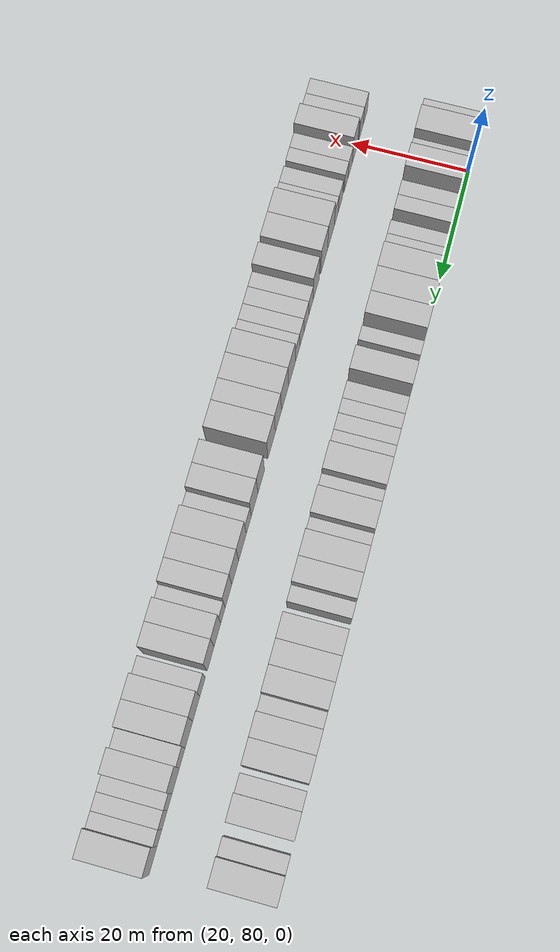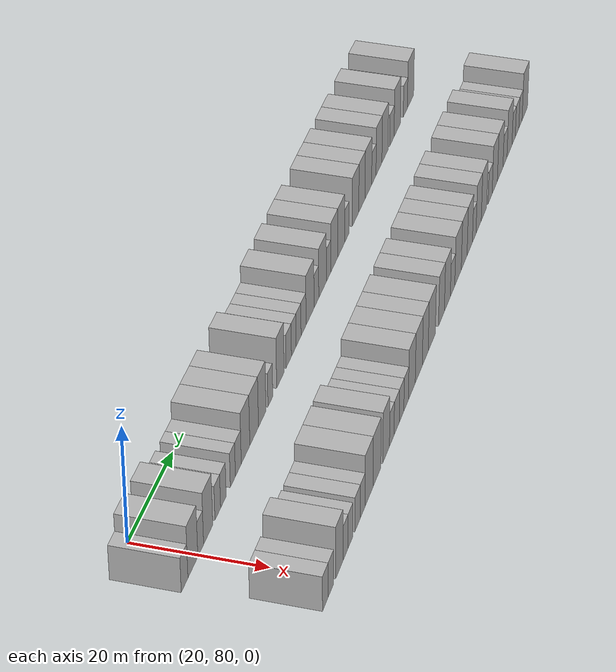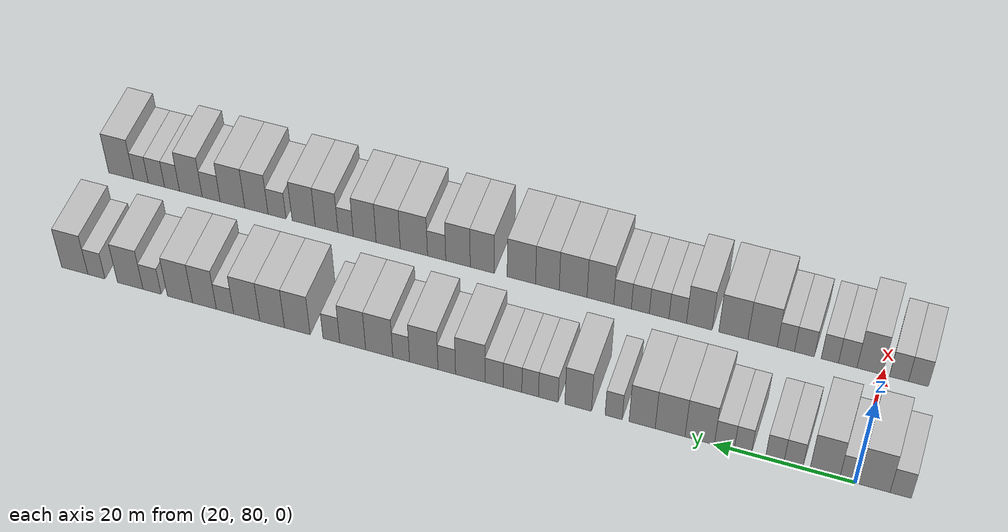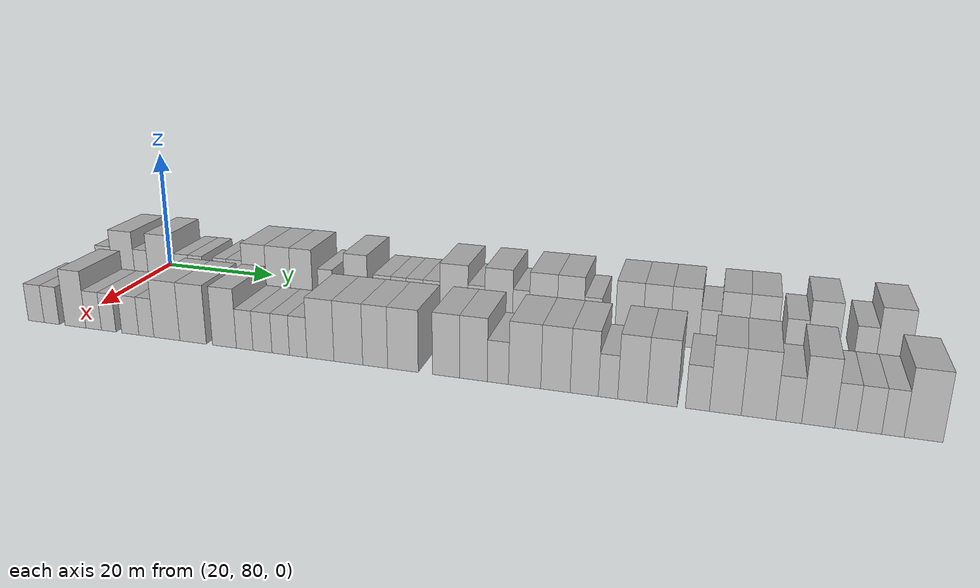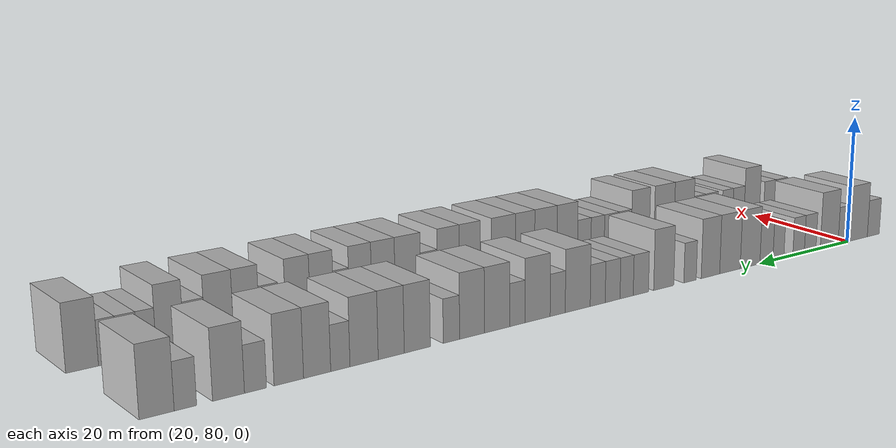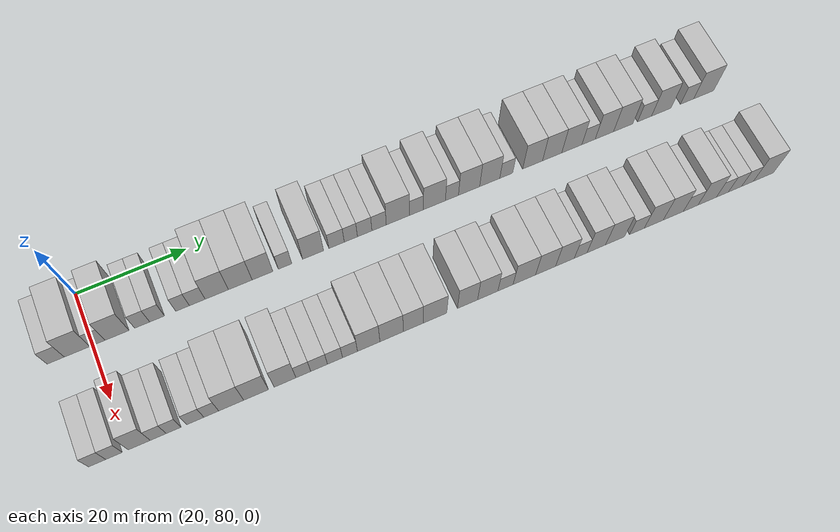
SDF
<sdf version="1.6">
 <world name="default">
  <model name="building_72">
   <static>1</static>
   <pose>25.0000 73.6860 0 0.000000 0.000000 0.000000</pose>
   <link name="link">
    <pose>0 0 3.00 0 0 0</pose>
    <collision name="collision"><geometry><box><size>10.0000 2.9551 6.0000</size></box></geometry></collision>
    <visual name="visual">
     <cast_shadows>0</cast_shadows>
     <geometry><box><size>10.0000 2.9551 6.0000</size></box></geometry>
     <material>
      <script>
       <uri>model://HANNAS_wall/materials/scripts</uri>
       <uri>model://HANNAS_wall/materials/textures</uri>
       <name>vrc/HANNAS_wall</name>
      </script>
     </material>
    </visual>
   </link>
  </model>
  <model name="building_73">
   <static>1</static>
   <pose>25.0000 77.3715 0 0.000000 0.000000 0.000000</pose>
   <link name="link">
    <pose>0 0 4.50 0 0 0</pose>
    <collision name="collision"><geometry><box><size>10.0000 4.4159 9.0000</size></box></geometry></collision>
    <visual name="visual">
     <cast_shadows>0</cast_shadows>
     <geometry><box><size>10.0000 4.4159 9.0000</size></box></geometry>
     <material>
      <script>
       <uri>model://HANNAS_wall/materials/scripts</uri>
       <uri>model://HANNAS_wall/materials/textures</uri>
       <name>vrc/HANNAS_wall</name>
      </script>
     </material>
    </visual>
   </link>
  </model>
  <model name="building_74">
   <static>1</static>
   <pose>25.0000 80.8892 0 0.000000 0.000000 0.000000</pose>
   <link name="link">
    <pose>0 0 3.00 0 0 0</pose>
    <collision name="collision"><geometry><box><size>10.0000 2.6195 6.0000</size></box></geometry></collision>
    <visual name="visual">
     <cast_shadows>0</cast_shadows>
     <geometry><box><size>10.0000 2.6195 6.0000</size></box></geometry>
     <material>
      <script>
       <uri>model://HANNAS_wall/materials/scripts</uri>
       <uri>model://HANNAS_wall/materials/textures</uri>
       <name>vrc/HANNAS_wall</name>
      </script>
     </material>
    </visual>
   </link>
  </model>
  <model name="building_75">
   <static>1</static>
   <pose>25.0000 84.2985 0 0.000000 0.000000 0.000000</pose>
   <link name="link">
    <pose>0 0 4.50 0 0 0</pose>
    <collision name="collision"><geometry><box><size>10.0000 4.1991 9.0000</size></box></geometry></collision>
    <visual name="visual">
     <cast_shadows>0</cast_shadows>
     <geometry><box><size>10.0000 4.1991 9.0000</size></box></geometry>
     <material>
      <script>
       <uri>model://HANNAS_wall/materials/scripts</uri>
       <uri>model://HANNAS_wall/materials/textures</uri>
       <name>vrc/HANNAS_wall</name>
      </script>
     </material>
    </visual>
   </link>
  </model>
  <model name="building_76">
   <static>1</static>
   <pose>25.0000 88.7278 0 0.000000 0.000000 0.000000</pose>
   <link name="link">
    <pose>0 0 3.00 0 0 0</pose>
    <collision name="collision"><geometry><box><size>10.0000 2.6595 6.0000</size></box></geometry></collision>
    <visual name="visual">
     <cast_shadows>0</cast_shadows>
     <geometry><box><size>10.0000 2.6595 6.0000</size></box></geometry>
     <material>
      <script>
       <uri>model://HANNAS_wall/materials/scripts</uri>
       <uri>model://HANNAS_wall/materials/textures</uri>
       <name>vrc/HANNAS_wall</name>
      </script>
     </material>
    </visual>
   </link>
  </model>
  <model name="building_77">
   <static>1</static>
   <pose>25.0000 91.3631 0 0.000000 0.000000 0.000000</pose>
   <link name="link">
    <pose>0 0 3.00 0 0 0</pose>
    <collision name="collision"><geometry><box><size>10.0000 2.6112 6.0000</size></box></geometry></collision>
    <visual name="visual">
     <cast_shadows>0</cast_shadows>
     <geometry><box><size>10.0000 2.6112 6.0000</size></box></geometry>
     <material>
      <script>
       <uri>model://HANNAS_wall/materials/scripts</uri>
       <uri>model://HANNAS_wall/materials/textures</uri>
       <name>vrc/HANNAS_wall</name>
      </script>
     </material>
    </visual>
   </link>
  </model>
  <model name="building_78">
   <static>1</static>
   <pose>25.0000 95.8824 0 0.000000 0.000000 0.000000</pose>
   <link name="link">
    <pose>0 0 3.00 0 0 0</pose>
    <collision name="collision"><geometry><box><size>10.0000 2.4275 6.0000</size></box></geometry></collision>
    <visual name="visual">
     <cast_shadows>0</cast_shadows>
     <geometry><box><size>10.0000 2.4275 6.0000</size></box></geometry>
     <material>
      <script>
       <uri>model://HANNAS_wall/materials/scripts</uri>
       <uri>model://HANNAS_wall/materials/textures</uri>
       <name>vrc/HANNAS_wall</name>
      </script>
     </material>
    </visual>
   </link>
  </model>
  <model name="building_79">
   <static>1</static>
   <pose>25.0000 98.5160 0 0.000000 0.000000 0.000000</pose>
   <link name="link">
    <pose>0 0 3.00 0 0 0</pose>
    <collision name="collision"><geometry><box><size>10.0000 2.8397 6.0000</size></box></geometry></collision>
    <visual name="visual">
     <cast_shadows>0</cast_shadows>
     <geometry><box><size>10.0000 2.8397 6.0000</size></box></geometry>
     <material>
      <script>
       <uri>model://HANNAS_wall/materials/scripts</uri>
       <uri>model://HANNAS_wall/materials/textures</uri>
       <name>vrc/HANNAS_wall</name>
      </script>
     </material>
    </visual>
   </link>
  </model>
  <model name="building_80">
   <static>1</static>
   <pose>25.0000 102.0439 0 0.000000 0.000000 0.000000</pose>
   <link name="link">
    <pose>0 0 4.50 0 0 0</pose>
    <collision name="collision"><geometry><box><size>10.0000 4.2161 9.0000</size></box></geometry></collision>
    <visual name="visual">
     <cast_shadows>0</cast_shadows>
     <geometry><box><size>10.0000 4.2161 9.0000</size></box></geometry>
     <material>
      <script>
       <uri>model://HANNAS_wall/materials/scripts</uri>
       <uri>model://HANNAS_wall/materials/textures</uri>
       <name>vrc/HANNAS_wall</name>
      </script>
     </material>
    </visual>
   </link>
  </model>
  <model name="building_81">
   <static>1</static>
   <pose>25.0000 106.3087 0 0.000000 0.000000 0.000000</pose>
   <link name="link">
    <pose>0 0 4.50 0 0 0</pose>
    <collision name="collision"><geometry><box><size>10.0000 4.3135 9.0000</size></box></geometry></collision>
    <visual name="visual">
     <cast_shadows>0</cast_shadows>
     <geometry><box><size>10.0000 4.3135 9.0000</size></box></geometry>
     <material>
      <script>
       <uri>model://HANNAS_wall/materials/scripts</uri>
       <uri>model://HANNAS_wall/materials/textures</uri>
       <name>vrc/HANNAS_wall</name>
      </script>
     </material>
    </visual>
   </link>
  </model>
  <model name="building_82">
   <static>1</static>
   <pose>25.0000 110.3620 0 0.000000 0.000000 0.000000</pose>
   <link name="link">
    <pose>0 0 4.50 0 0 0</pose>
    <collision name="collision"><geometry><box><size>10.0000 3.7931 9.0000</size></box></geometry></collision>
    <visual name="visual">
     <cast_shadows>0</cast_shadows>
     <geometry><box><size>10.0000 3.7931 9.0000</size></box></geometry>
     <material>
      <script>
       <uri>model://HANNAS_wall/materials/scripts</uri>
       <uri>model://HANNAS_wall/materials/textures</uri>
       <name>vrc/HANNAS_wall</name>
      </script>
     </material>
    </visual>
   </link>
  </model>
  <model name="building_83">
   <static>1</static>
   <pose>25.0000 114.5049 0 0.000000 0.000000 0.000000</pose>
   <link name="link">
    <pose>0 0 3.00 0 0 0</pose>
    <collision name="collision"><geometry><box><size>10.0000 2.4926 6.0000</size></box></geometry></collision>
    <visual name="visual">
     <cast_shadows>0</cast_shadows>
     <geometry><box><size>10.0000 2.4926 6.0000</size></box></geometry>
     <material>
      <script>
       <uri>model://HANNAS_wall/materials/scripts</uri>
       <uri>model://HANNAS_wall/materials/textures</uri>
       <name>vrc/HANNAS_wall</name>
      </script>
     </material>
    </visual>
   </link>
  </model>
  <model name="building_84">
   <static>1</static>
   <pose>25.0000 119.7114 0 0.000000 0.000000 0.000000</pose>
   <link name="link">
    <pose>0 0 4.50 0 0 0</pose>
    <collision name="collision"><geometry><box><size>10.0000 3.9204 9.0000</size></box></geometry></collision>
    <visual name="visual">
     <cast_shadows>0</cast_shadows>
     <geometry><box><size>10.0000 3.9204 9.0000</size></box></geometry>
     <material>
      <script>
       <uri>model://HANNAS_wall/materials/scripts</uri>
       <uri>model://HANNAS_wall/materials/textures</uri>
       <name>vrc/HANNAS_wall</name>
      </script>
     </material>
    </visual>
   </link>
  </model>
  <model name="building_85">
   <static>1</static>
   <pose>25.0000 124.1178 0 0.000000 0.000000 0.000000</pose>
   <link name="link">
    <pose>0 0 3.00 0 0 0</pose>
    <collision name="collision"><geometry><box><size>10.0000 2.8923 6.0000</size></box></geometry></collision>
    <visual name="visual">
     <cast_shadows>0</cast_shadows>
     <geometry><box><size>10.0000 2.8923 6.0000</size></box></geometry>
     <material>
      <script>
       <uri>model://HANNAS_wall/materials/scripts</uri>
       <uri>model://HANNAS_wall/materials/textures</uri>
       <name>vrc/HANNAS_wall</name>
      </script>
     </material>
    </visual>
   </link>
  </model>
  <model name="building_86">
   <static>1</static>
   <pose>25.0000 126.8024 0 0.000000 0.000000 0.000000</pose>
   <link name="link">
    <pose>0 0 3.00 0 0 0</pose>
    <collision name="collision"><geometry><box><size>10.0000 2.4771 6.0000</size></box></geometry></collision>
    <visual name="visual">
     <cast_shadows>0</cast_shadows>
     <geometry><box><size>10.0000 2.4771 6.0000</size></box></geometry>
     <material>
      <script>
       <uri>model://HANNAS_wall/materials/scripts</uri>
       <uri>model://HANNAS_wall/materials/textures</uri>
       <name>vrc/HANNAS_wall</name>
      </script>
     </material>
    </visual>
   </link>
  </model>
  <model name="building_87">
   <static>1</static>
   <pose>25.0000 129.4129 0 0.000000 0.000000 0.000000</pose>
   <link name="link">
    <pose>0 0 3.00 0 0 0</pose>
    <collision name="collision"><geometry><box><size>10.0000 2.7439 6.0000</size></box></geometry></collision>
    <visual name="visual">
     <cast_shadows>0</cast_shadows>
     <geometry><box><size>10.0000 2.7439 6.0000</size></box></geometry>
     <material>
      <script>
       <uri>model://HANNAS_wall/materials/scripts</uri>
       <uri>model://HANNAS_wall/materials/textures</uri>
       <name>vrc/HANNAS_wall</name>
      </script>
     </material>
    </visual>
   </link>
  </model>
  <model name="building_88">
   <static>1</static>
   <pose>25.0000 132.1511 0 0.000000 0.000000 0.000000</pose>
   <link name="link">
    <pose>0 0 3.00 0 0 0</pose>
    <collision name="collision"><geometry><box><size>10.0000 2.7324 6.0000</size></box></geometry></collision>
    <visual name="visual">
     <cast_shadows>0</cast_shadows>
     <geometry><box><size>10.0000 2.7324 6.0000</size></box></geometry>
     <material>
      <script>
       <uri>model://HANNAS_wall/materials/scripts</uri>
       <uri>model://HANNAS_wall/materials/textures</uri>
       <name>vrc/HANNAS_wall</name>
      </script>
     </material>
    </visual>
   </link>
  </model>
  <model name="building_89">
   <static>1</static>
   <pose>25.0000 135.7438 0 0.000000 0.000000 0.000000</pose>
   <link name="link">
    <pose>0 0 4.50 0 0 0</pose>
    <collision name="collision"><geometry><box><size>10.0000 4.4530 9.0000</size></box></geometry></collision>
    <visual name="visual">
     <cast_shadows>0</cast_shadows>
     <geometry><box><size>10.0000 4.4530 9.0000</size></box></geometry>
     <material>
      <script>
       <uri>model://HANNAS_wall/materials/scripts</uri>
       <uri>model://HANNAS_wall/materials/textures</uri>
       <name>vrc/HANNAS_wall</name>
      </script>
     </material>
    </visual>
   </link>
  </model>
  <model name="building_90">
   <static>1</static>
   <pose>25.0000 139.2900 0 0.000000 0.000000 0.000000</pose>
   <link name="link">
    <pose>0 0 3.00 0 0 0</pose>
    <collision name="collision"><geometry><box><size>10.0000 2.6393 6.0000</size></box></geometry></collision>
    <visual name="visual">
     <cast_shadows>0</cast_shadows>
     <geometry><box><size>10.0000 2.6393 6.0000</size></box></geometry>
     <material>
      <script>
       <uri>model://HANNAS_wall/materials/scripts</uri>
       <uri>model://HANNAS_wall/materials/textures</uri>
       <name>vrc/HANNAS_wall</name>
      </script>
     </material>
    </visual>
   </link>
  </model>
  <model name="building_91">
   <static>1</static>
   <pose>25.0000 142.7650 0 0.000000 0.000000 0.000000</pose>
   <link name="link">
    <pose>0 0 4.50 0 0 0</pose>
    <collision name="collision"><geometry><box><size>10.0000 4.3108 9.0000</size></box></geometry></collision>
    <visual name="visual">
     <cast_shadows>0</cast_shadows>
     <geometry><box><size>10.0000 4.3108 9.0000</size></box></geometry>
     <material>
      <script>
       <uri>model://HANNAS_wall/materials/scripts</uri>
       <uri>model://HANNAS_wall/materials/textures</uri>
       <name>vrc/HANNAS_wall</name>
      </script>
     </material>
    </visual>
   </link>
  </model>
  <model name="building_92">
   <static>1</static>
   <pose>25.0000 146.1986 0 0.000000 0.000000 0.000000</pose>
   <link name="link">
    <pose>0 0 3.00 0 0 0</pose>
    <collision name="collision"><geometry><box><size>10.0000 2.5564 6.0000</size></box></geometry></collision>
    <visual name="visual">
     <cast_shadows>0</cast_shadows>
     <geometry><box><size>10.0000 2.5564 6.0000</size></box></geometry>
     <material>
      <script>
       <uri>model://HANNAS_wall/materials/scripts</uri>
       <uri>model://HANNAS_wall/materials/textures</uri>
       <name>vrc/HANNAS_wall</name>
      </script>
     </material>
    </visual>
   </link>
  </model>
  <model name="building_93">
   <static>1</static>
   <pose>25.0000 149.5590 0 0.000000 0.000000 0.000000</pose>
   <link name="link">
    <pose>0 0 4.50 0 0 0</pose>
    <collision name="collision"><geometry><box><size>10.0000 4.1644 9.0000</size></box></geometry></collision>
    <visual name="visual">
     <cast_shadows>0</cast_shadows>
     <geometry><box><size>10.0000 4.1644 9.0000</size></box></geometry>
     <material>
      <script>
       <uri>model://HANNAS_wall/materials/scripts</uri>
       <uri>model://HANNAS_wall/materials/textures</uri>
       <name>vrc/HANNAS_wall</name>
      </script>
     </material>
    </visual>
   </link>
  </model>
  <model name="building_94">
   <static>1</static>
   <pose>25.0000 153.6321 0 0.000000 0.000000 0.000000</pose>
   <link name="link">
    <pose>0 0 4.50 0 0 0</pose>
    <collision name="collision"><geometry><box><size>10.0000 3.9818 9.0000</size></box></geometry></collision>
    <visual name="visual">
     <cast_shadows>0</cast_shadows>
     <geometry><box><size>10.0000 3.9818 9.0000</size></box></geometry>
     <material>
      <script>
       <uri>model://HANNAS_wall/materials/scripts</uri>
       <uri>model://HANNAS_wall/materials/textures</uri>
       <name>vrc/HANNAS_wall</name>
      </script>
     </material>
    </visual>
   </link>
  </model>
  <model name="building_95">
   <static>1</static>
   <pose>25.0000 156.9118 0 0.000000 0.000000 0.000000</pose>
   <link name="link">
    <pose>0 0 3.00 0 0 0</pose>
    <collision name="collision"><geometry><box><size>10.0000 2.5775 6.0000</size></box></geometry></collision>
    <visual name="visual">
     <cast_shadows>0</cast_shadows>
     <geometry><box><size>10.0000 2.5775 6.0000</size></box></geometry>
     <material>
      <script>
       <uri>model://HANNAS_wall/materials/scripts</uri>
       <uri>model://HANNAS_wall/materials/textures</uri>
       <name>vrc/HANNAS_wall</name>
      </script>
     </material>
    </visual>
   </link>
  </model>
  <model name="building_96">
   <static>1</static>
   <pose>25.0000 162.1892 0 0.000000 0.000000 0.000000</pose>
   <link name="link">
    <pose>0 0 4.50 0 0 0</pose>
    <collision name="collision"><geometry><box><size>10.0000 3.9775 9.0000</size></box></geometry></collision>
    <visual name="visual">
     <cast_shadows>0</cast_shadows>
     <geometry><box><size>10.0000 3.9775 9.0000</size></box></geometry>
     <material>
      <script>
       <uri>model://HANNAS_wall/materials/scripts</uri>
       <uri>model://HANNAS_wall/materials/textures</uri>
       <name>vrc/HANNAS_wall</name>
      </script>
     </material>
    </visual>
   </link>
  </model>
  <model name="building_97">
   <static>1</static>
   <pose>25.0000 166.1172 0 0.000000 0.000000 0.000000</pose>
   <link name="link">
    <pose>0 0 4.50 0 0 0</pose>
    <collision name="collision"><geometry><box><size>10.0000 3.8783 9.0000</size></box></geometry></collision>
    <visual name="visual">
     <cast_shadows>0</cast_shadows>
     <geometry><box><size>10.0000 3.8783 9.0000</size></box></geometry>
     <material>
      <script>
       <uri>model://HANNAS_wall/materials/scripts</uri>
       <uri>model://HANNAS_wall/materials/textures</uri>
       <name>vrc/HANNAS_wall</name>
      </script>
     </material>
    </visual>
   </link>
  </model>
  <model name="building_98">
   <static>1</static>
   <pose>25.0000 170.1062 0 0.000000 0.000000 0.000000</pose>
   <link name="link">
    <pose>0 0 4.50 0 0 0</pose>
    <collision name="collision"><geometry><box><size>10.0000 4.0998 9.0000</size></box></geometry></collision>
    <visual name="visual">
     <cast_shadows>0</cast_shadows>
     <geometry><box><size>10.0000 4.0998 9.0000</size></box></geometry>
     <material>
      <script>
       <uri>model://HANNAS_wall/materials/scripts</uri>
       <uri>model://HANNAS_wall/materials/textures</uri>
       <name>vrc/HANNAS_wall</name>
      </script>
     </material>
    </visual>
   </link>
  </model>
  <model name="building_99">
   <static>1</static>
   <pose>25.0000 173.5241 0 0.000000 0.000000 0.000000</pose>
   <link name="link">
    <pose>0 0 3.00 0 0 0</pose>
    <collision name="collision"><geometry><box><size>10.0000 2.7359 6.0000</size></box></geometry></collision>
    <visual name="visual">
     <cast_shadows>0</cast_shadows>
     <geometry><box><size>10.0000 2.7359 6.0000</size></box></geometry>
     <material>
      <script>
       <uri>model://HANNAS_wall/materials/scripts</uri>
       <uri>model://HANNAS_wall/materials/textures</uri>
       <name>vrc/HANNAS_wall</name>
      </script>
     </material>
    </visual>
   </link>
  </model>
  <model name="building_100">
   <static>1</static>
   <pose>25.0000 176.7786 0 0.000000 0.000000 0.000000</pose>
   <link name="link">
    <pose>0 0 4.50 0 0 0</pose>
    <collision name="collision"><geometry><box><size>10.0000 3.7732 9.0000</size></box></geometry></collision>
    <visual name="visual">
     <cast_shadows>0</cast_shadows>
     <geometry><box><size>10.0000 3.7732 9.0000</size></box></geometry>
     <material>
      <script>
       <uri>model://HANNAS_wall/materials/scripts</uri>
       <uri>model://HANNAS_wall/materials/textures</uri>
       <name>vrc/HANNAS_wall</name>
      </script>
     </material>
    </visual>
   </link>
  </model>
  <model name="building_101">
   <static>1</static>
   <pose>25.0000 180.6677 0 0.000000 0.000000 0.000000</pose>
   <link name="link">
    <pose>0 0 4.50 0 0 0</pose>
    <collision name="collision"><geometry><box><size>10.0000 4.0049 9.0000</size></box></geometry></collision>
    <visual name="visual">
     <cast_shadows>0</cast_shadows>
     <geometry><box><size>10.0000 4.0049 9.0000</size></box></geometry>
     <material>
      <script>
       <uri>model://HANNAS_wall/materials/scripts</uri>
       <uri>model://HANNAS_wall/materials/textures</uri>
       <name>vrc/HANNAS_wall</name>
      </script>
     </material>
    </visual>
   </link>
  </model>
  <model name="building_102">
   <static>1</static>
   <pose>25.0000 185.1234 0 0.000000 0.000000 0.000000</pose>
   <link name="link">
    <pose>0 0 3.00 0 0 0</pose>
    <collision name="collision"><geometry><box><size>10.0000 2.9064 6.0000</size></box></geometry></collision>
    <visual name="visual">
     <cast_shadows>0</cast_shadows>
     <geometry><box><size>10.0000 2.9064 6.0000</size></box></geometry>
     <material>
      <script>
       <uri>model://HANNAS_wall/materials/scripts</uri>
       <uri>model://HANNAS_wall/materials/textures</uri>
       <name>vrc/HANNAS_wall</name>
      </script>
     </material>
    </visual>
   </link>
  </model>
  <model name="building_103">
   <static>1</static>
   <pose>25.0000 188.6304 0 0.000000 0.000000 0.000000</pose>
   <link name="link">
    <pose>0 0 4.50 0 0 0</pose>
    <collision name="collision"><geometry><box><size>10.0000 4.1078 9.0000</size></box></geometry></collision>
    <visual name="visual">
     <cast_shadows>0</cast_shadows>
     <geometry><box><size>10.0000 4.1078 9.0000</size></box></geometry>
     <material>
      <script>
       <uri>model://HANNAS_wall/materials/scripts</uri>
       <uri>model://HANNAS_wall/materials/textures</uri>
       <name>vrc/HANNAS_wall</name>
      </script>
     </material>
    </visual>
   </link>
  </model>
  <model name="building_104">
   <static>1</static>
   <pose>25.0000 194.0766 0 0.000000 0.000000 0.000000</pose>
   <link name="link">
    <pose>0 0 3.00 0 0 0</pose>
    <collision name="collision"><geometry><box><size>10.0000 2.7846 6.0000</size></box></geometry></collision>
    <visual name="visual">
     <cast_shadows>0</cast_shadows>
     <geometry><box><size>10.0000 2.7846 6.0000</size></box></geometry>
     <material>
      <script>
       <uri>model://HANNAS_wall/materials/scripts</uri>
       <uri>model://HANNAS_wall/materials/textures</uri>
       <name>vrc/HANNAS_wall</name>
      </script>
     </material>
    </visual>
   </link>
  </model>
  <model name="building_105">
   <static>1</static>
   <pose>25.0000 197.6005 0 0.000000 0.000000 0.000000</pose>
   <link name="link">
    <pose>0 0 4.50 0 0 0</pose>
    <collision name="collision"><geometry><box><size>10.0000 4.2631 9.0000</size></box></geometry></collision>
    <visual name="visual">
     <cast_shadows>0</cast_shadows>
     <geometry><box><size>10.0000 4.2631 9.0000</size></box></geometry>
     <material>
      <script>
       <uri>model://HANNAS_wall/materials/scripts</uri>
       <uri>model://HANNAS_wall/materials/textures</uri>
       <name>vrc/HANNAS_wall</name>
      </script>
     </material>
    </visual>
   </link>
  </model>
  <model name="building_173">
   <static>1</static>
   <pose>44.0000 74.9483 0 0.000000 0.000000 0.000000</pose>
   <link name="link">
    <pose>0 0 3.00 0 0 0</pose>
    <collision name="collision"><geometry><box><size>10.0000 2.8652 6.0000</size></box></geometry></collision>
    <visual name="visual">
     <cast_shadows>0</cast_shadows>
     <geometry><box><size>10.0000 2.8652 6.0000</size></box></geometry>
     <material>
      <script>
       <uri>model://HANNAS_wall/materials/scripts</uri>
       <uri>model://HANNAS_wall/materials/textures</uri>
       <name>vrc/HANNAS_wall</name>
      </script>
     </material>
    </visual>
   </link>
  </model>
  <model name="building_174">
   <static>1</static>
   <pose>44.0000 77.7513 0 0.000000 0.000000 0.000000</pose>
   <link name="link">
    <pose>0 0 3.00 0 0 0</pose>
    <collision name="collision"><geometry><box><size>10.0000 2.7409 6.0000</size></box></geometry></collision>
    <visual name="visual">
     <cast_shadows>0</cast_shadows>
     <geometry><box><size>10.0000 2.7409 6.0000</size></box></geometry>
     <material>
      <script>
       <uri>model://HANNAS_wall/materials/scripts</uri>
       <uri>model://HANNAS_wall/materials/textures</uri>
       <name>vrc/HANNAS_wall</name>
      </script>
     </material>
    </visual>
   </link>
  </model>
  <model name="building_175">
   <static>1</static>
   <pose>44.0000 81.9737 0 0.000000 0.000000 0.000000</pose>
   <link name="link">
    <pose>0 0 4.50 0 0 0</pose>
    <collision name="collision"><geometry><box><size>10.0000 3.7039 9.0000</size></box></geometry></collision>
    <visual name="visual">
     <cast_shadows>0</cast_shadows>
     <geometry><box><size>10.0000 3.7039 9.0000</size></box></geometry>
     <material>
      <script>
       <uri>model://HANNAS_wall/materials/scripts</uri>
       <uri>model://HANNAS_wall/materials/textures</uri>
       <name>vrc/HANNAS_wall</name>
      </script>
     </material>
    </visual>
   </link>
  </model>
  <model name="building_176">
   <static>1</static>
   <pose>44.0000 85.1796 0 0.000000 0.000000 0.000000</pose>
   <link name="link">
    <pose>0 0 3.00 0 0 0</pose>
    <collision name="collision"><geometry><box><size>10.0000 2.7078 6.0000</size></box></geometry></collision>
    <visual name="visual">
     <cast_shadows>0</cast_shadows>
     <geometry><box><size>10.0000 2.7078 6.0000</size></box></geometry>
     <material>
      <script>
       <uri>model://HANNAS_wall/materials/scripts</uri>
       <uri>model://HANNAS_wall/materials/textures</uri>
       <name>vrc/HANNAS_wall</name>
      </script>
     </material>
    </visual>
   </link>
  </model>
  <model name="building_177">
   <static>1</static>
   <pose>44.0000 87.7917 0 0.000000 0.000000 0.000000</pose>
   <link name="link">
    <pose>0 0 3.00 0 0 0</pose>
    <collision name="collision"><geometry><box><size>10.0000 2.5165 6.0000</size></box></geometry></collision>
    <visual name="visual">
     <cast_shadows>0</cast_shadows>
     <geometry><box><size>10.0000 2.5165 6.0000</size></box></geometry>
     <material>
      <script>
       <uri>model://HANNAS_wall/materials/scripts</uri>
       <uri>model://HANNAS_wall/materials/textures</uri>
       <name>vrc/HANNAS_wall</name>
      </script>
     </material>
    </visual>
   </link>
  </model>
  <model name="building_178">
   <static>1</static>
   <pose>44.0000 91.5091 0 0.000000 0.000000 0.000000</pose>
   <link name="link">
    <pose>0 0 3.00 0 0 0</pose>
    <collision name="collision"><geometry><box><size>10.0000 2.9184 6.0000</size></box></geometry></collision>
    <visual name="visual">
     <cast_shadows>0</cast_shadows>
     <geometry><box><size>10.0000 2.9184 6.0000</size></box></geometry>
     <material>
      <script>
       <uri>model://HANNAS_wall/materials/scripts</uri>
       <uri>model://HANNAS_wall/materials/textures</uri>
       <name>vrc/HANNAS_wall</name>
      </script>
     </material>
    </visual>
   </link>
  </model>
  <model name="building_179">
   <static>1</static>
   <pose>44.0000 94.2416 0 0.000000 0.000000 0.000000</pose>
   <link name="link">
    <pose>0 0 3.00 0 0 0</pose>
    <collision name="collision"><geometry><box><size>10.0000 2.5466 6.0000</size></box></geometry></collision>
    <visual name="visual">
     <cast_shadows>0</cast_shadows>
     <geometry><box><size>10.0000 2.5466 6.0000</size></box></geometry>
     <material>
      <script>
       <uri>model://HANNAS_wall/materials/scripts</uri>
       <uri>model://HANNAS_wall/materials/textures</uri>
       <name>vrc/HANNAS_wall</name>
      </script>
     </material>
    </visual>
   </link>
  </model>
  <model name="building_180">
   <static>1</static>
   <pose>44.0000 97.6808 0 0.000000 0.000000 0.000000</pose>
   <link name="link">
    <pose>0 0 4.50 0 0 0</pose>
    <collision name="collision"><geometry><box><size>10.0000 4.3316 9.0000</size></box></geometry></collision>
    <visual name="visual">
     <cast_shadows>0</cast_shadows>
     <geometry><box><size>10.0000 4.3316 9.0000</size></box></geometry>
     <material>
      <script>
       <uri>model://HANNAS_wall/materials/scripts</uri>
       <uri>model://HANNAS_wall/materials/textures</uri>
       <name>vrc/HANNAS_wall</name>
      </script>
     </material>
    </visual>
   </link>
  </model>
  <model name="building_181">
   <static>1</static>
   <pose>44.0000 102.0148 0 0.000000 0.000000 0.000000</pose>
   <link name="link">
    <pose>0 0 4.50 0 0 0</pose>
    <collision name="collision"><geometry><box><size>10.0000 4.3364 9.0000</size></box></geometry></collision>
    <visual name="visual">
     <cast_shadows>0</cast_shadows>
     <geometry><box><size>10.0000 4.3364 9.0000</size></box></geometry>
     <material>
      <script>
       <uri>model://HANNAS_wall/materials/scripts</uri>
       <uri>model://HANNAS_wall/materials/textures</uri>
       <name>vrc/HANNAS_wall</name>
      </script>
     </material>
    </visual>
   </link>
  </model>
  <model name="building_182">
   <static>1</static>
   <pose>44.0000 107.1036 0 0.000000 0.000000 0.000000</pose>
   <link name="link">
    <pose>0 0 4.50 0 0 0</pose>
    <collision name="collision"><geometry><box><size>10.0000 3.8412 9.0000</size></box></geometry></collision>
    <visual name="visual">
     <cast_shadows>0</cast_shadows>
     <geometry><box><size>10.0000 3.8412 9.0000</size></box></geometry>
     <material>
      <script>
       <uri>model://HANNAS_wall/materials/scripts</uri>
       <uri>model://HANNAS_wall/materials/textures</uri>
       <name>vrc/HANNAS_wall</name>
      </script>
     </material>
    </visual>
   </link>
  </model>
  <model name="building_183">
   <static>1</static>
   <pose>44.0000 110.3410 0 0.000000 0.000000 0.000000</pose>
   <link name="link">
    <pose>0 0 3.00 0 0 0</pose>
    <collision name="collision"><geometry><box><size>10.0000 2.6335 6.0000</size></box></geometry></collision>
    <visual name="visual">
     <cast_shadows>0</cast_shadows>
     <geometry><box><size>10.0000 2.6335 6.0000</size></box></geometry>
     <material>
      <script>
       <uri>model://HANNAS_wall/materials/scripts</uri>
       <uri>model://HANNAS_wall/materials/textures</uri>
       <name>vrc/HANNAS_wall</name>
      </script>
     </material>
    </visual>
   </link>
  </model>
  <model name="building_184">
   <static>1</static>
   <pose>44.0000 113.1438 0 0.000000 0.000000 0.000000</pose>
   <link name="link">
    <pose>0 0 3.00 0 0 0</pose>
    <collision name="collision"><geometry><box><size>10.0000 2.9721 6.0000</size></box></geometry></collision>
    <visual name="visual">
     <cast_shadows>0</cast_shadows>
     <geometry><box><size>10.0000 2.9721 6.0000</size></box></geometry>
     <material>
      <script>
       <uri>model://HANNAS_wall/materials/scripts</uri>
       <uri>model://HANNAS_wall/materials/textures</uri>
       <name>vrc/HANNAS_wall</name>
      </script>
     </material>
    </visual>
   </link>
  </model>
  <model name="building_185">
   <static>1</static>
   <pose>44.0000 115.9842 0 0.000000 0.000000 0.000000</pose>
   <link name="link">
    <pose>0 0 3.00 0 0 0</pose>
    <collision name="collision"><geometry><box><size>10.0000 2.7087 6.0000</size></box></geometry></collision>
    <visual name="visual">
     <cast_shadows>0</cast_shadows>
     <geometry><box><size>10.0000 2.7087 6.0000</size></box></geometry>
     <material>
      <script>
       <uri>model://HANNAS_wall/materials/scripts</uri>
       <uri>model://HANNAS_wall/materials/textures</uri>
       <name>vrc/HANNAS_wall</name>
      </script>
     </material>
    </visual>
   </link>
  </model>
  <model name="building_186">
   <static>1</static>
   <pose>44.0000 118.6826 0 0.000000 0.000000 0.000000</pose>
   <link name="link">
    <pose>0 0 3.00 0 0 0</pose>
    <collision name="collision"><geometry><box><size>10.0000 2.6881 6.0000</size></box></geometry></collision>
    <visual name="visual">
     <cast_shadows>0</cast_shadows>
     <geometry><box><size>10.0000 2.6881 6.0000</size></box></geometry>
     <material>
      <script>
       <uri>model://HANNAS_wall/materials/scripts</uri>
       <uri>model://HANNAS_wall/materials/textures</uri>
       <name>vrc/HANNAS_wall</name>
      </script>
     </material>
    </visual>
   </link>
  </model>
  <model name="building_187">
   <static>1</static>
   <pose>44.0000 122.0593 0 0.000000 0.000000 0.000000</pose>
   <link name="link">
    <pose>0 0 4.50 0 0 0</pose>
    <collision name="collision"><geometry><box><size>10.0000 4.0653 9.0000</size></box></geometry></collision>
    <visual name="visual">
     <cast_shadows>0</cast_shadows>
     <geometry><box><size>10.0000 4.0653 9.0000</size></box></geometry>
     <material>
      <script>
       <uri>model://HANNAS_wall/materials/scripts</uri>
       <uri>model://HANNAS_wall/materials/textures</uri>
       <name>vrc/HANNAS_wall</name>
      </script>
     </material>
    </visual>
   </link>
  </model>
  <model name="building_188">
   <static>1</static>
   <pose>44.0000 126.2298 0 0.000000 0.000000 0.000000</pose>
   <link name="link">
    <pose>0 0 4.50 0 0 0</pose>
    <collision name="collision"><geometry><box><size>10.0000 4.2759 9.0000</size></box></geometry></collision>
    <visual name="visual">
     <cast_shadows>0</cast_shadows>
     <geometry><box><size>10.0000 4.2759 9.0000</size></box></geometry>
     <material>
      <script>
       <uri>model://HANNAS_wall/materials/scripts</uri>
       <uri>model://HANNAS_wall/materials/textures</uri>
       <name>vrc/HANNAS_wall</name>
      </script>
     </material>
    </visual>
   </link>
  </model>
  <model name="building_189">
   <static>1</static>
   <pose>44.0000 130.1870 0 0.000000 0.000000 0.000000</pose>
   <link name="link">
    <pose>0 0 4.50 0 0 0</pose>
    <collision name="collision"><geometry><box><size>10.0000 3.6385 9.0000</size></box></geometry></collision>
    <visual name="visual">
     <cast_shadows>0</cast_shadows>
     <geometry><box><size>10.0000 3.6385 9.0000</size></box></geometry>
     <material>
      <script>
       <uri>model://HANNAS_wall/materials/scripts</uri>
       <uri>model://HANNAS_wall/materials/textures</uri>
       <name>vrc/HANNAS_wall</name>
      </script>
     </material>
    </visual>
   </link>
  </model>
  <model name="building_190">
   <static>1</static>
   <pose>44.0000 134.2052 0 0.000000 0.000000 0.000000</pose>
   <link name="link">
    <pose>0 0 4.50 0 0 0</pose>
    <collision name="collision"><geometry><box><size>10.0000 4.3978 9.0000</size></box></geometry></collision>
    <visual name="visual">
     <cast_shadows>0</cast_shadows>
     <geometry><box><size>10.0000 4.3978 9.0000</size></box></geometry>
     <material>
      <script>
       <uri>model://HANNAS_wall/materials/scripts</uri>
       <uri>model://HANNAS_wall/materials/textures</uri>
       <name>vrc/HANNAS_wall</name>
      </script>
     </material>
    </visual>
   </link>
  </model>
  <model name="building_191">
   <static>1</static>
   <pose>44.0000 140.2891 0 0.000000 0.000000 0.000000</pose>
   <link name="link">
    <pose>0 0 4.50 0 0 0</pose>
    <collision name="collision"><geometry><box><size>10.0000 3.7701 9.0000</size></box></geometry></collision>
    <visual name="visual">
     <cast_shadows>0</cast_shadows>
     <geometry><box><size>10.0000 3.7701 9.0000</size></box></geometry>
     <material>
      <script>
       <uri>model://HANNAS_wall/materials/scripts</uri>
       <uri>model://HANNAS_wall/materials/textures</uri>
       <name>vrc/HANNAS_wall</name>
      </script>
     </material>
    </visual>
   </link>
  </model>
  <model name="building_192">
   <static>1</static>
   <pose>44.0000 144.0941 0 0.000000 0.000000 0.000000</pose>
   <link name="link">
    <pose>0 0 4.50 0 0 0</pose>
    <collision name="collision"><geometry><box><size>10.0000 3.8398 9.0000</size></box></geometry></collision>
    <visual name="visual">
     <cast_shadows>0</cast_shadows>
     <geometry><box><size>10.0000 3.8398 9.0000</size></box></geometry>
     <material>
      <script>
       <uri>model://HANNAS_wall/materials/scripts</uri>
       <uri>model://HANNAS_wall/materials/textures</uri>
       <name>vrc/HANNAS_wall</name>
      </script>
     </material>
    </visual>
   </link>
  </model>
  <model name="building_193">
   <static>1</static>
   <pose>44.0000 147.4562 0 0.000000 0.000000 0.000000</pose>
   <link name="link">
    <pose>0 0 3.00 0 0 0</pose>
    <collision name="collision"><geometry><box><size>10.0000 2.8843 6.0000</size></box></geometry></collision>
    <visual name="visual">
     <cast_shadows>0</cast_shadows>
     <geometry><box><size>10.0000 2.8843 6.0000</size></box></geometry>
     <material>
      <script>
       <uri>model://HANNAS_wall/materials/scripts</uri>
       <uri>model://HANNAS_wall/materials/textures</uri>
       <name>vrc/HANNAS_wall</name>
      </script>
     </material>
    </visual>
   </link>
  </model>
  <model name="building_194">
   <static>1</static>
   <pose>44.0000 151.0530 0 0.000000 0.000000 0.000000</pose>
   <link name="link">
    <pose>0 0 4.50 0 0 0</pose>
    <collision name="collision"><geometry><box><size>10.0000 4.3094 9.0000</size></box></geometry></collision>
    <visual name="visual">
     <cast_shadows>0</cast_shadows>
     <geometry><box><size>10.0000 4.3094 9.0000</size></box></geometry>
     <material>
      <script>
       <uri>model://HANNAS_wall/materials/scripts</uri>
       <uri>model://HANNAS_wall/materials/textures</uri>
       <name>vrc/HANNAS_wall</name>
      </script>
     </material>
    </visual>
   </link>
  </model>
  <model name="building_195">
   <static>1</static>
   <pose>44.0000 155.1321 0 0.000000 0.000000 0.000000</pose>
   <link name="link">
    <pose>0 0 4.50 0 0 0</pose>
    <collision name="collision"><geometry><box><size>10.0000 3.8488 9.0000</size></box></geometry></collision>
    <visual name="visual">
     <cast_shadows>0</cast_shadows>
     <geometry><box><size>10.0000 3.8488 9.0000</size></box></geometry>
     <material>
      <script>
       <uri>model://HANNAS_wall/materials/scripts</uri>
       <uri>model://HANNAS_wall/materials/textures</uri>
       <name>vrc/HANNAS_wall</name>
      </script>
     </material>
    </visual>
   </link>
  </model>
  <model name="building_196">
   <static>1</static>
   <pose>44.0000 158.8764 0 0.000000 0.000000 0.000000</pose>
   <link name="link">
    <pose>0 0 4.50 0 0 0</pose>
    <collision name="collision"><geometry><box><size>10.0000 3.6398 9.0000</size></box></geometry></collision>
    <visual name="visual">
     <cast_shadows>0</cast_shadows>
     <geometry><box><size>10.0000 3.6398 9.0000</size></box></geometry>
     <material>
      <script>
       <uri>model://HANNAS_wall/materials/scripts</uri>
       <uri>model://HANNAS_wall/materials/textures</uri>
       <name>vrc/HANNAS_wall</name>
      </script>
     </material>
    </visual>
   </link>
  </model>
  <model name="building_197">
   <static>1</static>
   <pose>44.0000 161.9303 0 0.000000 0.000000 0.000000</pose>
   <link name="link">
    <pose>0 0 3.00 0 0 0</pose>
    <collision name="collision"><geometry><box><size>10.0000 2.4680 6.0000</size></box></geometry></collision>
    <visual name="visual">
     <cast_shadows>0</cast_shadows>
     <geometry><box><size>10.0000 2.4680 6.0000</size></box></geometry>
     <material>
      <script>
       <uri>model://HANNAS_wall/materials/scripts</uri>
       <uri>model://HANNAS_wall/materials/textures</uri>
       <name>vrc/HANNAS_wall</name>
      </script>
     </material>
    </visual>
   </link>
  </model>
  <model name="building_198">
   <static>1</static>
   <pose>44.0000 164.9883 0 0.000000 0.000000 0.000000</pose>
   <link name="link">
    <pose>0 0 4.50 0 0 0</pose>
    <collision name="collision"><geometry><box><size>10.0000 3.6481 9.0000</size></box></geometry></collision>
    <visual name="visual">
     <cast_shadows>0</cast_shadows>
     <geometry><box><size>10.0000 3.6481 9.0000</size></box></geometry>
     <material>
      <script>
       <uri>model://HANNAS_wall/materials/scripts</uri>
       <uri>model://HANNAS_wall/materials/textures</uri>
       <name>vrc/HANNAS_wall</name>
      </script>
     </material>
    </visual>
   </link>
  </model>
  <model name="building_199">
   <static>1</static>
   <pose>44.0000 168.6910 0 0.000000 0.000000 0.000000</pose>
   <link name="link">
    <pose>0 0 4.50 0 0 0</pose>
    <collision name="collision"><geometry><box><size>10.0000 3.7573 9.0000</size></box></geometry></collision>
    <visual name="visual">
     <cast_shadows>0</cast_shadows>
     <geometry><box><size>10.0000 3.7573 9.0000</size></box></geometry>
     <material>
      <script>
       <uri>model://HANNAS_wall/materials/scripts</uri>
       <uri>model://HANNAS_wall/materials/textures</uri>
       <name>vrc/HANNAS_wall</name>
      </script>
     </material>
    </visual>
   </link>
  </model>
  <model name="building_200">
   <static>1</static>
   <pose>44.0000 173.0274 0 0.000000 0.000000 0.000000</pose>
   <link name="link">
    <pose>0 0 3.00 0 0 0</pose>
    <collision name="collision"><geometry><box><size>10.0000 2.9155 6.0000</size></box></geometry></collision>
    <visual name="visual">
     <cast_shadows>0</cast_shadows>
     <geometry><box><size>10.0000 2.9155 6.0000</size></box></geometry>
     <material>
      <script>
       <uri>model://HANNAS_wall/materials/scripts</uri>
       <uri>model://HANNAS_wall/materials/textures</uri>
       <name>vrc/HANNAS_wall</name>
      </script>
     </material>
    </visual>
   </link>
  </model>
  <model name="building_201">
   <static>1</static>
   <pose>44.0000 176.3813 0 0.000000 0.000000 0.000000</pose>
   <link name="link">
    <pose>0 0 4.50 0 0 0</pose>
    <collision name="collision"><geometry><box><size>10.0000 3.7923 9.0000</size></box></geometry></collision>
    <visual name="visual">
     <cast_shadows>0</cast_shadows>
     <geometry><box><size>10.0000 3.7923 9.0000</size></box></geometry>
     <material>
      <script>
       <uri>model://HANNAS_wall/materials/scripts</uri>
       <uri>model://HANNAS_wall/materials/textures</uri>
       <name>vrc/HANNAS_wall</name>
      </script>
     </material>
    </visual>
   </link>
  </model>
  <model name="building_202">
   <static>1</static>
   <pose>44.0000 180.3025 0 0.000000 0.000000 0.000000</pose>
   <link name="link">
    <pose>0 0 4.50 0 0 0</pose>
    <collision name="collision"><geometry><box><size>10.0000 4.0501 9.0000</size></box></geometry></collision>
    <visual name="visual">
     <cast_shadows>0</cast_shadows>
     <geometry><box><size>10.0000 4.0501 9.0000</size></box></geometry>
     <material>
      <script>
       <uri>model://HANNAS_wall/materials/scripts</uri>
       <uri>model://HANNAS_wall/materials/textures</uri>
       <name>vrc/HANNAS_wall</name>
      </script>
     </material>
    </visual>
   </link>
  </model>
  <model name="building_203">
   <static>1</static>
   <pose>44.0000 183.8075 0 0.000000 0.000000 0.000000</pose>
   <link name="link">
    <pose>0 0 3.00 0 0 0</pose>
    <collision name="collision"><geometry><box><size>10.0000 2.9600 6.0000</size></box></geometry></collision>
    <visual name="visual">
     <cast_shadows>0</cast_shadows>
     <geometry><box><size>10.0000 2.9600 6.0000</size></box></geometry>
     <material>
      <script>
       <uri>model://HANNAS_wall/materials/scripts</uri>
       <uri>model://HANNAS_wall/materials/textures</uri>
       <name>vrc/HANNAS_wall</name>
      </script>
     </material>
    </visual>
   </link>
  </model>
  <model name="building_204">
   <static>1</static>
   <pose>44.0000 187.1737 0 0.000000 0.000000 0.000000</pose>
   <link name="link">
    <pose>0 0 4.50 0 0 0</pose>
    <collision name="collision"><geometry><box><size>10.0000 3.7724 9.0000</size></box></geometry></collision>
    <visual name="visual">
     <cast_shadows>0</cast_shadows>
     <geometry><box><size>10.0000 3.7724 9.0000</size></box></geometry>
     <material>
      <script>
       <uri>model://HANNAS_wall/materials/scripts</uri>
       <uri>model://HANNAS_wall/materials/textures</uri>
       <name>vrc/HANNAS_wall</name>
      </script>
     </material>
    </visual>
   </link>
  </model>
  <model name="building_205">
   <static>1</static>
   <pose>44.0000 190.2968 0 0.000000 0.000000 0.000000</pose>
   <link name="link">
    <pose>0 0 3.00 0 0 0</pose>
    <collision name="collision"><geometry><box><size>10.0000 2.4739 6.0000</size></box></geometry></collision>
    <visual name="visual">
     <cast_shadows>0</cast_shadows>
     <geometry><box><size>10.0000 2.4739 6.0000</size></box></geometry>
     <material>
      <script>
       <uri>model://HANNAS_wall/materials/scripts</uri>
       <uri>model://HANNAS_wall/materials/textures</uri>
       <name>vrc/HANNAS_wall</name>
      </script>
     </material>
    </visual>
   </link>
  </model>
  <model name="building_206">
   <static>1</static>
   <pose>44.0000 192.8942 0 0.000000 0.000000 0.000000</pose>
   <link name="link">
    <pose>0 0 3.00 0 0 0</pose>
    <collision name="collision"><geometry><box><size>10.0000 2.7209 6.0000</size></box></geometry></collision>
    <visual name="visual">
     <cast_shadows>0</cast_shadows>
     <geometry><box><size>10.0000 2.7209 6.0000</size></box></geometry>
     <material>
      <script>
       <uri>model://HANNAS_wall/materials/scripts</uri>
       <uri>model://HANNAS_wall/materials/textures</uri>
       <name>vrc/HANNAS_wall</name>
      </script>
     </material>
    </visual>
   </link>
  </model>
  <model name="building_207">
   <static>1</static>
   <pose>44.0000 195.4762 0 0.000000 0.000000 0.000000</pose>
   <link name="link">
    <pose>0 0 3.00 0 0 0</pose>
    <collision name="collision"><geometry><box><size>10.0000 2.4429 6.0000</size></box></geometry></collision>
    <visual name="visual">
     <cast_shadows>0</cast_shadows>
     <geometry><box><size>10.0000 2.4429 6.0000</size></box></geometry>
     <material>
      <script>
       <uri>model://HANNAS_wall/materials/scripts</uri>
       <uri>model://HANNAS_wall/materials/textures</uri>
       <name>vrc/HANNAS_wall</name>
      </script>
     </material>
    </visual>
   </link>
  </model>
  <model name="building_208">
   <static>1</static>
   <pose>44.0000 198.7872 0 0.000000 0.000000 0.000000</pose>
   <link name="link">
    <pose>0 0 4.50 0 0 0</pose>
    <collision name="collision"><geometry><box><size>10.0000 4.1791 9.0000</size></box></geometry></collision>
    <visual name="visual">
     <cast_shadows>0</cast_shadows>
     <geometry><box><size>10.0000 4.1791 9.0000</size></box></geometry>
     <material>
      <script>
       <uri>model://HANNAS_wall/materials/scripts</uri>
       <uri>model://HANNAS_wall/materials/textures</uri>
       <name>vrc/HANNAS_wall</name>
      </script>
     </material>
    </visual>
   </link>
  </model>
 </world>
</sdf>
